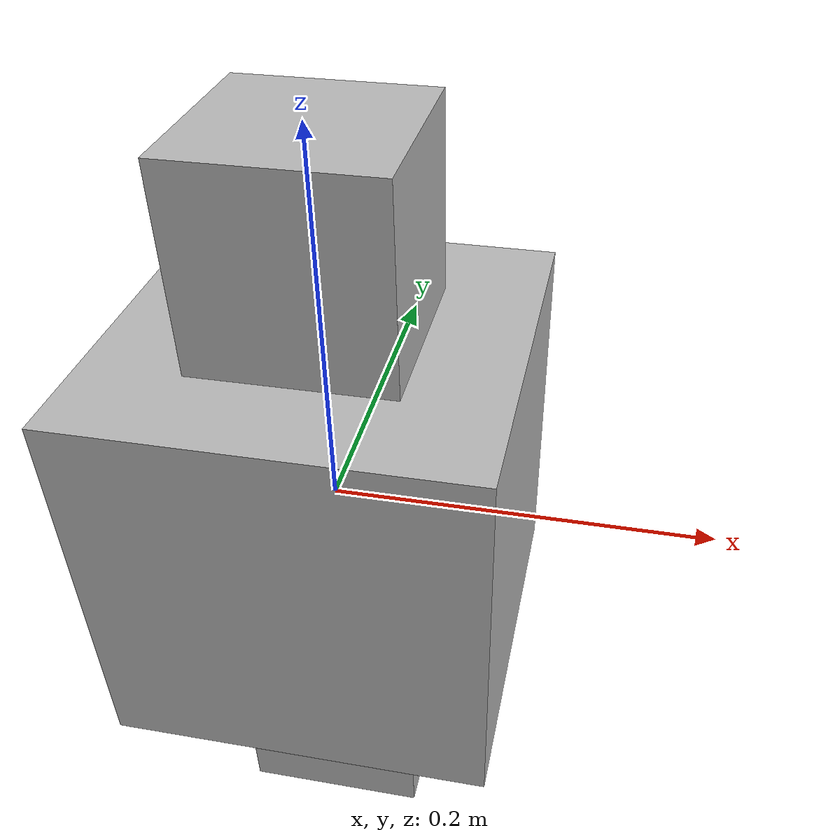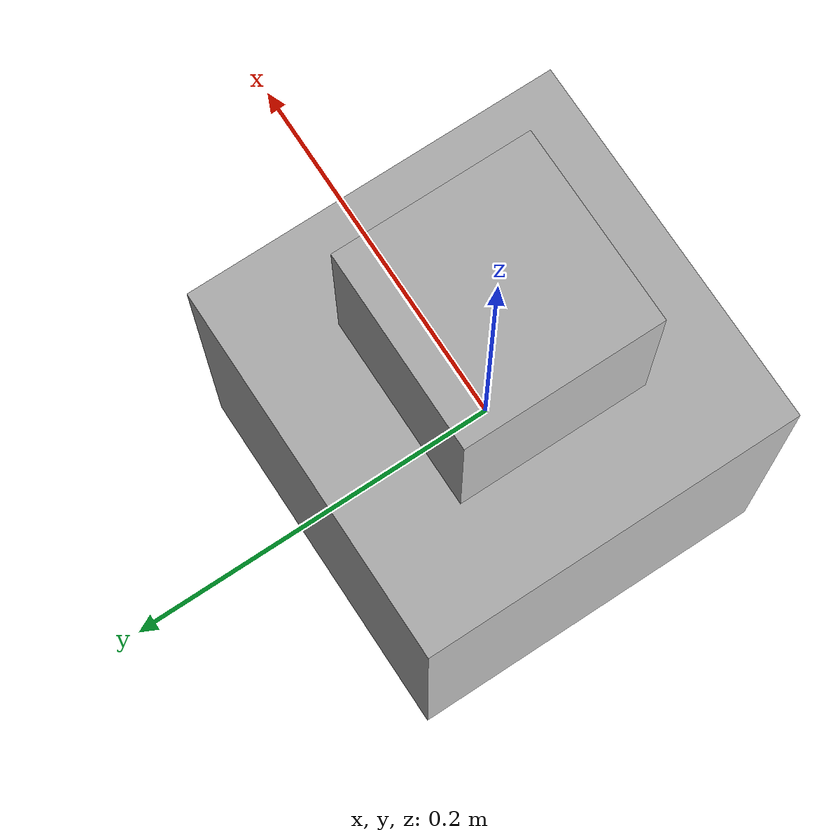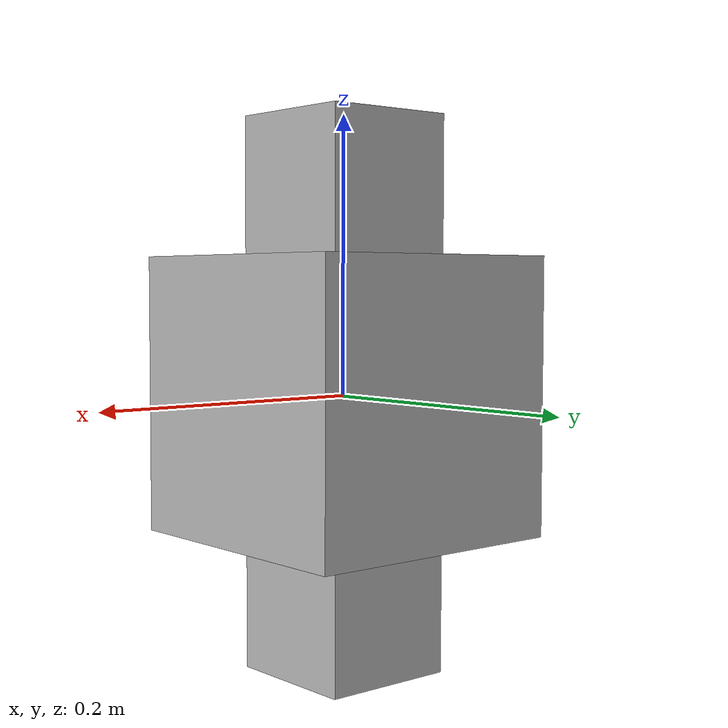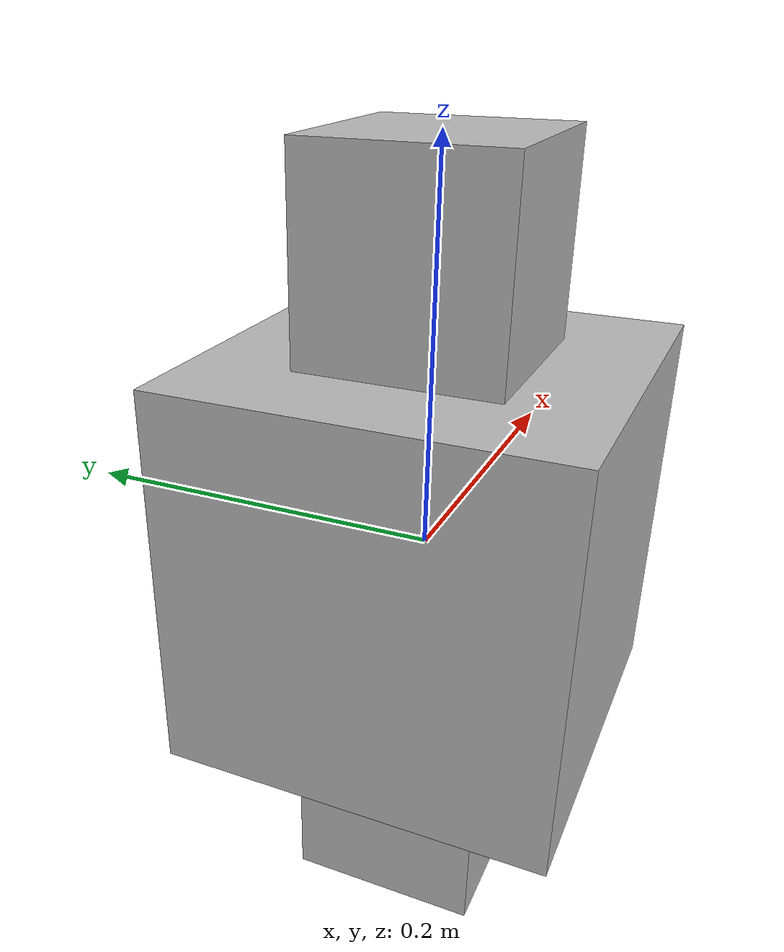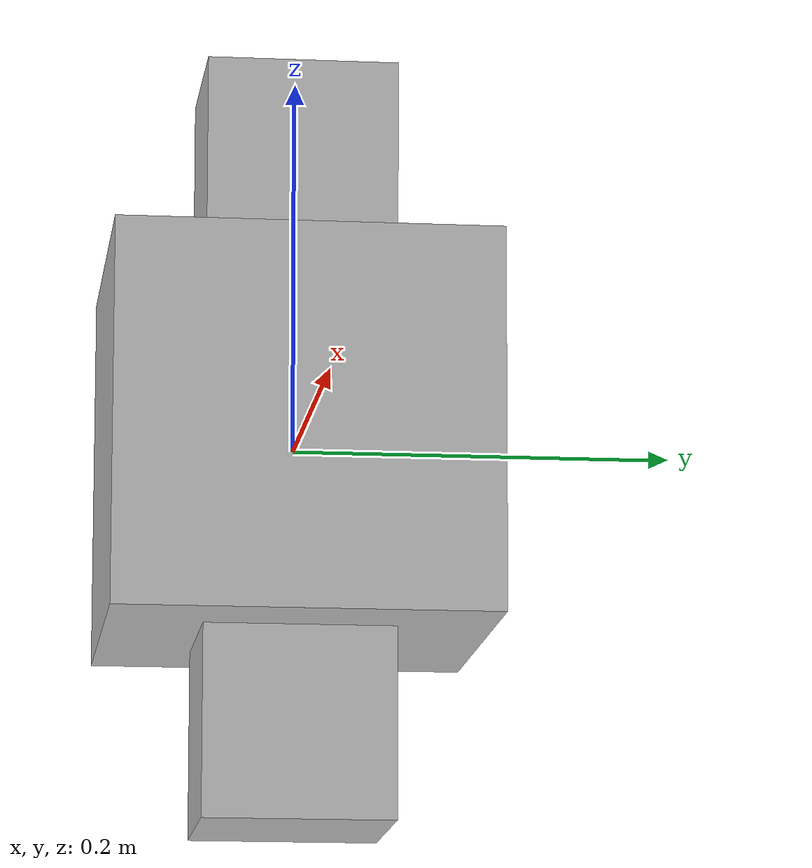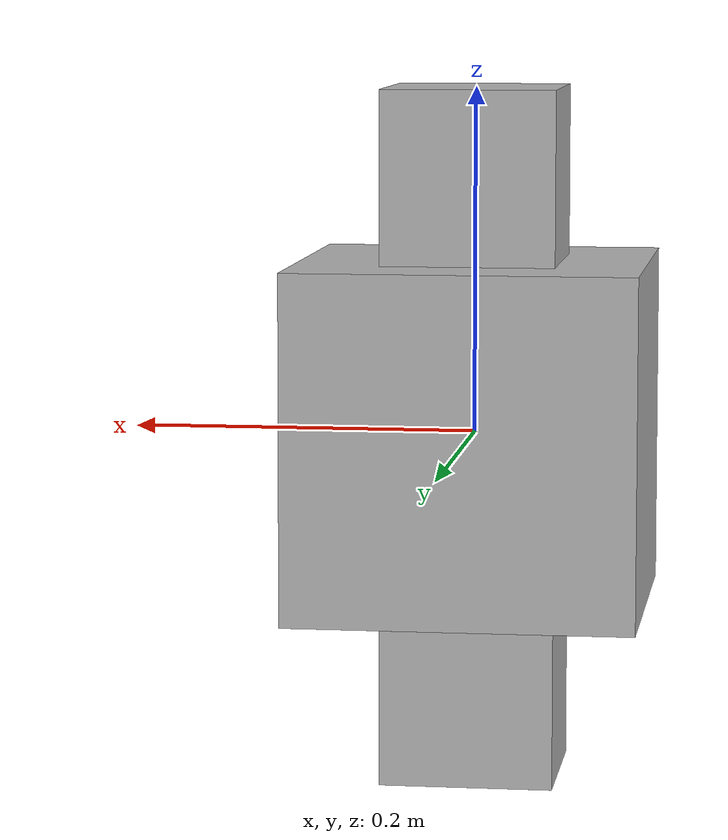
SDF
<?xml version='1.0' encoding='utf-8'?>
<sdf version="1.7">
  <model name="material_dynamic_lights">
    <link name="link">
      <visual name="link_visual">
        <geometry>
          <box>
            <size>0.2 0.2 0.2</size>
          </box>
        </geometry>
        <material>
          <lighting>true</lighting>
        </material>
      </visual>
      <visual name="link_visual_no_lights">
        <geometry>
          <box>
            <size>0.1 0.1 0.4</size>
          </box>
        </geometry>
        <material>
          <lighting>false</lighting>
        </material>
      </visual>
      <collision name="link_collision">
        <geometry>
          <box>
            <size>0.2 0.2 0.2</size>
          </box>
        </geometry>
      </collision>
      <collision name="link_collision_no_lights">
        <geometry>
          <box>
            <size>0.1 0.1 0.4</size>
          </box>
        </geometry>
      </collision>
      <inertial>
        <mass>1.23</mass>
        <inertia>
          <ixx>0.0205</ixx>
          <ixy>0</ixy>
          <ixz>0</ixz>
          <iyy>0.017425</iyy>
          <iyz>0</iyz>
          <izz>0.005125</izz>
        </inertia>
      </inertial>
    </link>
  </model>
</sdf>
